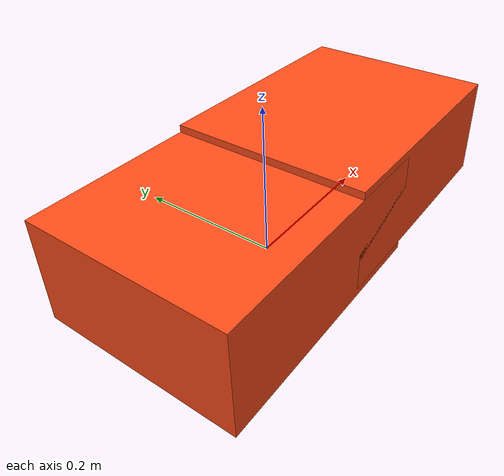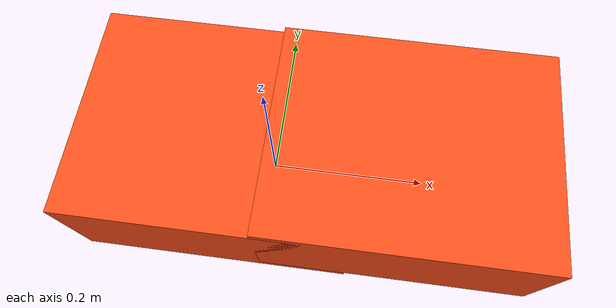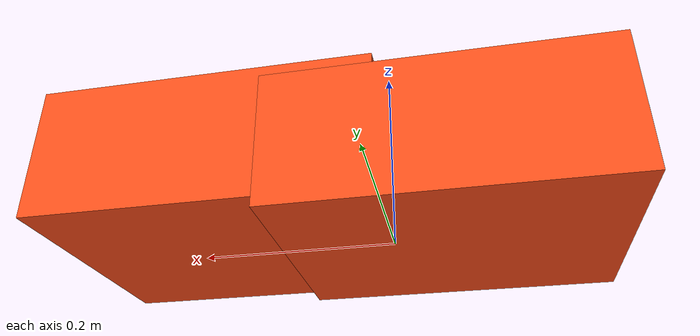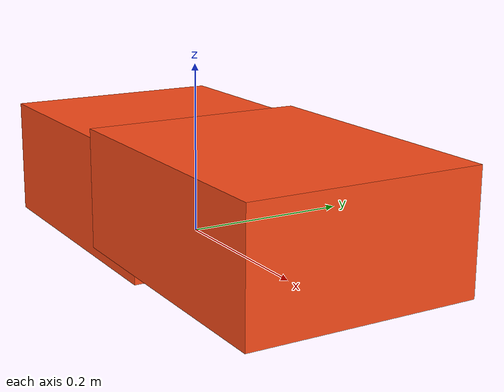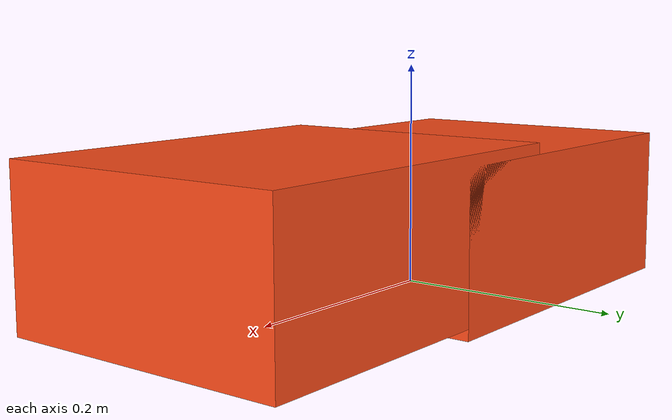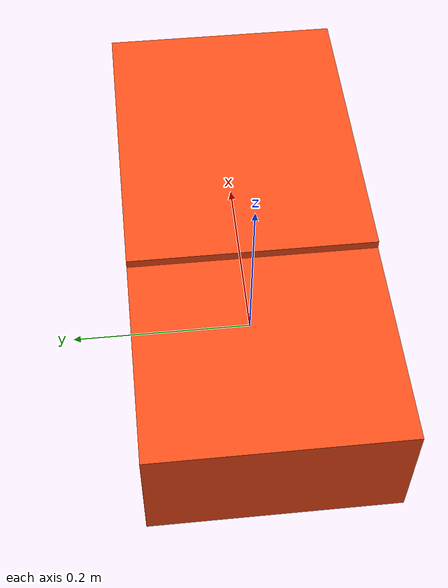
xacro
<?xml version="1.0"?>

<robot name="ros_urdf" xmlns:xacro="http://www.ros.org/wiki/xacro" >

    <xacro:include filename="inertial_macros.xacro"/>
    <xacro:property name="head_length" value="0.335"/>
    <xacro:property name="head_width" value="0.265"/>
    <xacro:property name="head_height" value="0.138"/>
    <xacro:property name="head_mass" value="1.0"/>
    <xacro:property name="wheel_radius" value="0.033"/>
    <xacro:property name="wheel_thickness" value="0.026"/>
    <xacro:property name="wheel_mass" value="0.05"/>
    <xacro:property name="wheel_offset_x" value="0.226"/>
    <xacro:property name="wheel_offset_y" value="0.1485"/>
    <xacro:property name="wheel_offset_z" value="0.01"/>

    <material name="white">
        <color rgba="1 1 1 1" />
    </material>

    <material name="orange">
        <color rgba="1 0.3 0.1 1"/>
    </material>

    <material name="blue">
        <color rgba="0.2 0.2 1 1"/>
    </material>

    <material name="black">
        <color rgba="0 0 0 1"/>
    </material>

    <material name="red">
        <color rgba="1 0 0 1"/>
    </material>
    <!-- start -->
    <!-- 머리  -->
    <link name="base_link">
        <visual>
            <origin xyz="${head_length/2} 0 ${head_height/2}"/>

            <geometry>
                <box size="${head_length} ${head_width} ${head_height}"/>
            </geometry>

            <material name="orange"/>
        </visual>

        <collision>
            <origin xyz="${head_length/2} 0 ${head_height/2}"/>
            <geometry>
                <box size="${head_length} ${head_width} ${head_height}"/>
            </geometry>
        </collision>

        <xacro:inertial_box mass="0.5" x="${head_length}" y="${head_width}" z="${head_height}">
            <origin xyz="${head_length/2} 0 ${head_height/2}" rpy="0 0 0"/>
        </xacro:inertial_box>
    </link>

    <joint name="head_joint" type="fixed">
        <parent link="base_link"/>
        <child link="base_link_1"/>
        <origin xyz="${-wheel_offset_x} 0 ${-wheel_offset_z}"/>
    </joint>

    <!-- base 1    가슴    -->
    <link name="base_link_1">
        <visual>
            <origin xyz="${head_length/2} 0 ${head_height/2}"/>

            <geometry>
                <box size="${head_length} ${head_width} ${head_height}"/>
            </geometry>

            <material name="orange"/>
        </visual>

        <collision>
            <origin xyz="${head_length/2} 0 ${head_height/2}"/>
            <geometry>
                <box size="${head_length} ${head_width} ${head_height}"/>
            </geometry>
        </collision>

        <xacro:inertial_box mass="0.5" x="${head_length}" y="${head_width}" z="${head_height}">
            <origin xyz="${head_length/2} 0 ${head_height/2}" rpy="0 0 0"/>
        </xacro:inertial_box>
    </link>

</robot>

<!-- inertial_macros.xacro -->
<robot xmlns:xacro="http://www.ros.org/wiki/xacro" >

    <xacro:macro name="inertial_sphere" params="mass radius *origin">
        <inertial>
            <xacro:insert_block name="origin"/>
            <mass value="${mass}" />
            <inertia ixx="${(2/5) * mass * (radius*radius)}" ixy="0.0" ixz="0.0"
                iyy="${(2/5) * mass * (radius*radius)}" iyz="0.0"
                izz="${(2/5) * mass * (radius*radius)}" />
        </inertial>
    </xacro:macro>

    <xacro:macro name="inertial_box" params="mass x y z *origin">
        <inertial>
            <xacro:insert_block name="origin"/>
            <mass value="${mass}" />
            <inertia ixx="${(1/12) * mass * (y*y+z*z)}" ixy="0.0" ixz="0.0"
                iyy="${(1/12) * mass * (x*x+z*z)}" iyz="0.0"
                izz="${(1/12) * mass * (x*x+y*y)}" />
        </inertial>
    </xacro:macro>

    <xacro:macro name="inertial_cylinder" params="mass length radius *origin">
        <inertial>
            <xacro:insert_block name="origin"/>
            <mass value="${mass}" />
            <inertia ixx="${(1/12) * mass * (3*radius*radius + length*length)}" ixy="0.0" ixz="0.0"
                iyy="${(1/12) * mass * (3*radius*radius + length*length)}" iyz="0.0"
                izz="${(1/2) * mass * (radius*radius)}" />
        </inertial>
    </xacro:macro>

</robot>
